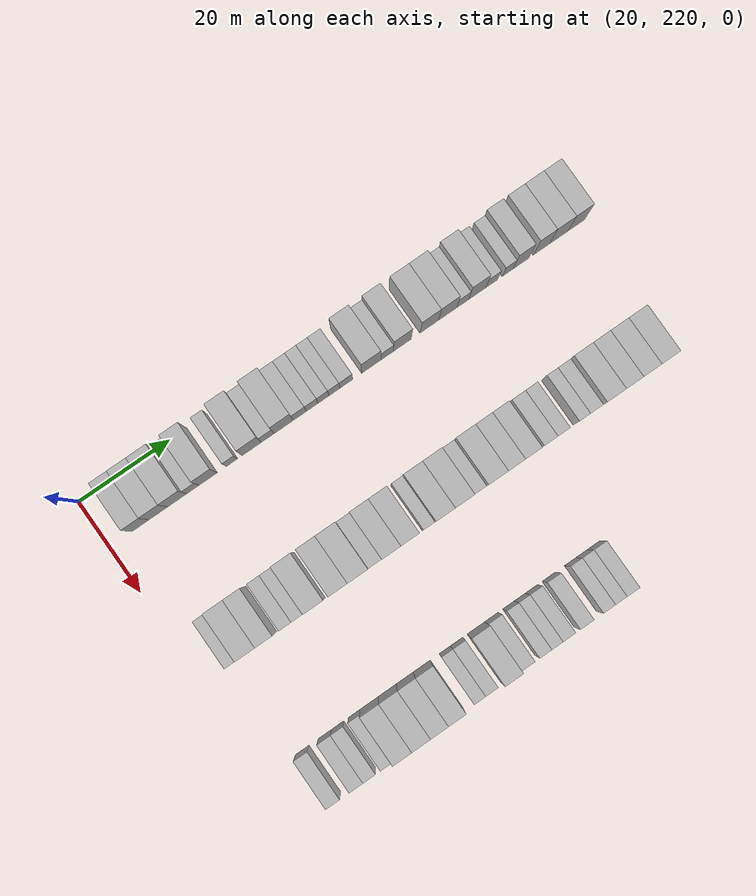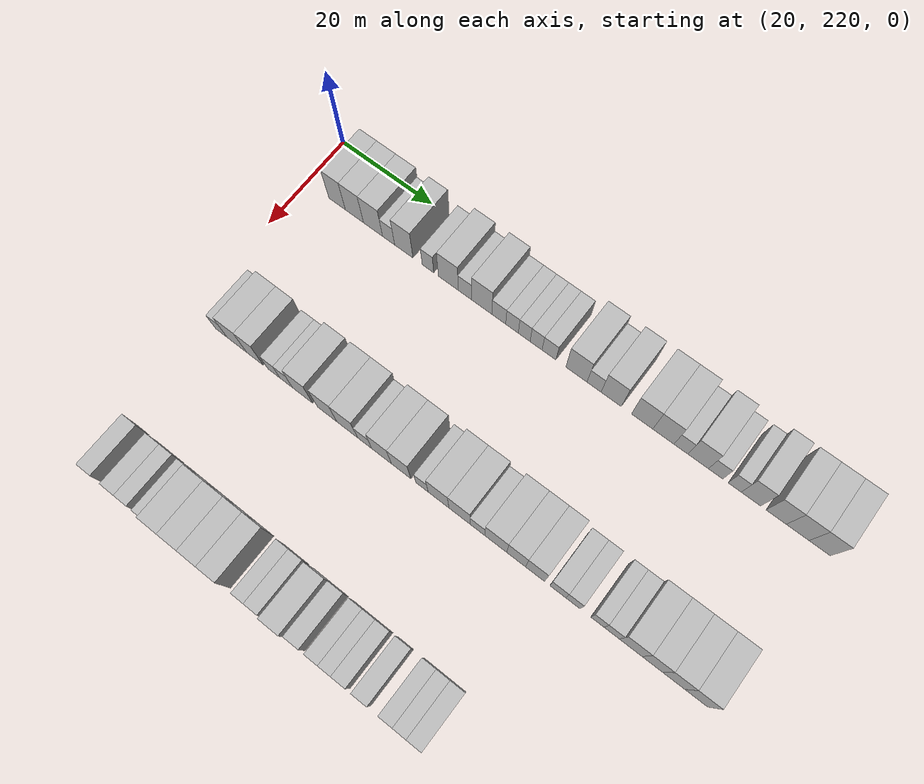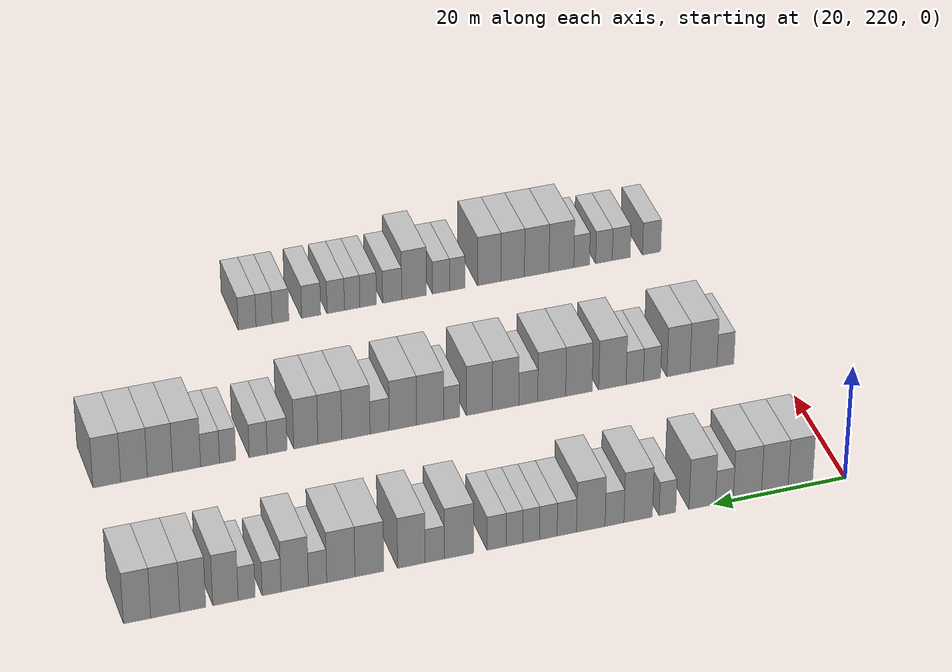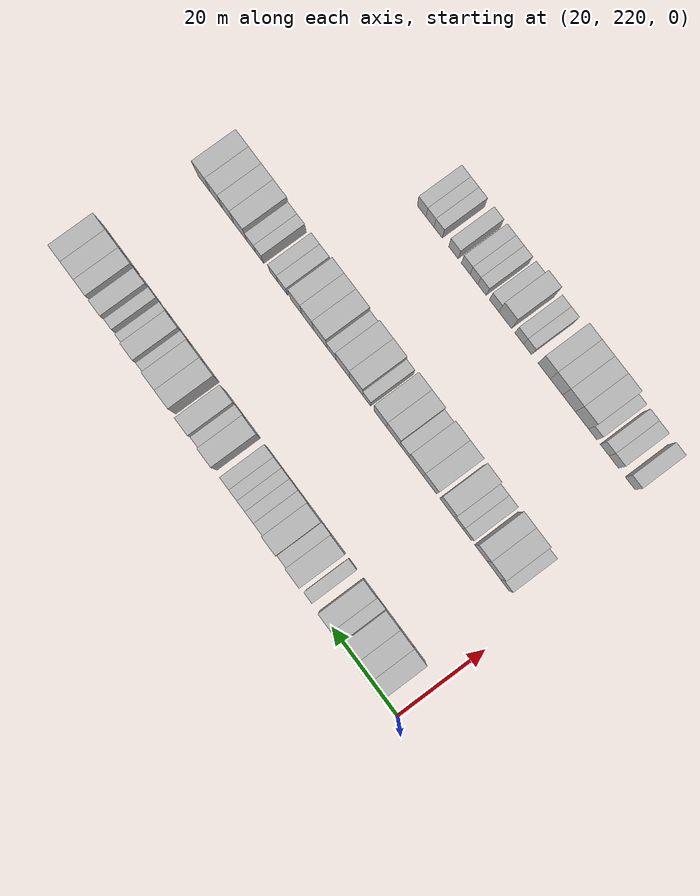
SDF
<sdf version="1.6">
 <world name="default">
  <model name="building_172">
   <static>1</static>
   <pose>25.0000 226.9117 0 0.000000 0.000000 0.000000</pose>
   <link name="link">
    <pose>0 0 4.50 0 0 0</pose>
    <collision name="collision"><geometry><box><size>10.0000 3.7264 9.0000</size></box></geometry></collision>
    <visual name="visual">
     <cast_shadows>0</cast_shadows>
     <geometry><box><size>10.0000 3.7264 9.0000</size></box></geometry>
     <material>
      <script>
       <uri>model://HANNAS_wall/materials/scripts</uri>
       <uri>model://HANNAS_wall/materials/textures</uri>
       <name>vrc/HANNAS_wall</name>
      </script>
     </material>
    </visual>
   </link>
  </model>
  <model name="building_173">
   <static>1</static>
   <pose>25.0000 230.8053 0 0.000000 0.000000 0.000000</pose>
   <link name="link">
    <pose>0 0 4.50 0 0 0</pose>
    <collision name="collision"><geometry><box><size>10.0000 4.0607 9.0000</size></box></geometry></collision>
    <visual name="visual">
     <cast_shadows>0</cast_shadows>
     <geometry><box><size>10.0000 4.0607 9.0000</size></box></geometry>
     <material>
      <script>
       <uri>model://HANNAS_wall/materials/scripts</uri>
       <uri>model://HANNAS_wall/materials/textures</uri>
       <name>vrc/HANNAS_wall</name>
      </script>
     </material>
    </visual>
   </link>
  </model>
  <model name="building_174">
   <static>1</static>
   <pose>25.0000 234.9613 0 0.000000 0.000000 0.000000</pose>
   <link name="link">
    <pose>0 0 4.50 0 0 0</pose>
    <collision name="collision"><geometry><box><size>10.0000 4.2513 9.0000</size></box></geometry></collision>
    <visual name="visual">
     <cast_shadows>0</cast_shadows>
     <geometry><box><size>10.0000 4.2513 9.0000</size></box></geometry>
     <material>
      <script>
       <uri>model://HANNAS_wall/materials/scripts</uri>
       <uri>model://HANNAS_wall/materials/textures</uri>
       <name>vrc/HANNAS_wall</name>
      </script>
     </material>
    </visual>
   </link>
  </model>
  <model name="building_175">
   <static>1</static>
   <pose>25.0000 238.4279 0 0.000000 0.000000 0.000000</pose>
   <link name="link">
    <pose>0 0 3.00 0 0 0</pose>
    <collision name="collision"><geometry><box><size>10.0000 2.6818 6.0000</size></box></geometry></collision>
    <visual name="visual">
     <cast_shadows>0</cast_shadows>
     <geometry><box><size>10.0000 2.6818 6.0000</size></box></geometry>
     <material>
      <script>
       <uri>model://HANNAS_wall/materials/scripts</uri>
       <uri>model://HANNAS_wall/materials/textures</uri>
       <name>vrc/HANNAS_wall</name>
      </script>
     </material>
    </visual>
   </link>
  </model>
  <model name="building_176">
   <static>1</static>
   <pose>25.0000 241.7730 0 0.000000 0.000000 0.000000</pose>
   <link name="link">
    <pose>0 0 4.50 0 0 0</pose>
    <collision name="collision"><geometry><box><size>10.0000 4.0085 9.0000</size></box></geometry></collision>
    <visual name="visual">
     <cast_shadows>0</cast_shadows>
     <geometry><box><size>10.0000 4.0085 9.0000</size></box></geometry>
     <material>
      <script>
       <uri>model://HANNAS_wall/materials/scripts</uri>
       <uri>model://HANNAS_wall/materials/textures</uri>
       <name>vrc/HANNAS_wall</name>
      </script>
     </material>
    </visual>
   </link>
  </model>
  <model name="building_177">
   <static>1</static>
   <pose>25.0000 247.0288 0 0.000000 0.000000 0.000000</pose>
   <link name="link">
    <pose>0 0 3.00 0 0 0</pose>
    <collision name="collision"><geometry><box><size>10.0000 2.5030 6.0000</size></box></geometry></collision>
    <visual name="visual">
     <cast_shadows>0</cast_shadows>
     <geometry><box><size>10.0000 2.5030 6.0000</size></box></geometry>
     <material>
      <script>
       <uri>model://HANNAS_wall/materials/scripts</uri>
       <uri>model://HANNAS_wall/materials/textures</uri>
       <name>vrc/HANNAS_wall</name>
      </script>
     </material>
    </visual>
   </link>
  </model>
  <model name="building_178">
   <static>1</static>
   <pose>25.0000 251.4161 0 0.000000 0.000000 0.000000</pose>
   <link name="link">
    <pose>0 0 4.50 0 0 0</pose>
    <collision name="collision"><geometry><box><size>10.0000 4.2717 9.0000</size></box></geometry></collision>
    <visual name="visual">
     <cast_shadows>0</cast_shadows>
     <geometry><box><size>10.0000 4.2717 9.0000</size></box></geometry>
     <material>
      <script>
       <uri>model://HANNAS_wall/materials/scripts</uri>
       <uri>model://HANNAS_wall/materials/textures</uri>
       <name>vrc/HANNAS_wall</name>
      </script>
     </material>
    </visual>
   </link>
  </model>
  <model name="building_179">
   <static>1</static>
   <pose>25.0000 254.9574 0 0.000000 0.000000 0.000000</pose>
   <link name="link">
    <pose>0 0 3.00 0 0 0</pose>
    <collision name="collision"><geometry><box><size>10.0000 2.8108 6.0000</size></box></geometry></collision>
    <visual name="visual">
     <cast_shadows>0</cast_shadows>
     <geometry><box><size>10.0000 2.8108 6.0000</size></box></geometry>
     <material>
      <script>
       <uri>model://HANNAS_wall/materials/scripts</uri>
       <uri>model://HANNAS_wall/materials/textures</uri>
       <name>vrc/HANNAS_wall</name>
      </script>
     </material>
    </visual>
   </link>
  </model>
  <model name="building_180">
   <static>1</static>
   <pose>25.0000 258.4894 0 0.000000 0.000000 0.000000</pose>
   <link name="link">
    <pose>0 0 4.50 0 0 0</pose>
    <collision name="collision"><geometry><box><size>10.0000 4.2532 9.0000</size></box></geometry></collision>
    <visual name="visual">
     <cast_shadows>0</cast_shadows>
     <geometry><box><size>10.0000 4.2532 9.0000</size></box></geometry>
     <material>
      <script>
       <uri>model://HANNAS_wall/materials/scripts</uri>
       <uri>model://HANNAS_wall/materials/textures</uri>
       <name>vrc/HANNAS_wall</name>
      </script>
     </material>
    </visual>
   </link>
  </model>
  <model name="building_181">
   <static>1</static>
   <pose>25.0000 262.0651 0 0.000000 0.000000 0.000000</pose>
   <link name="link">
    <pose>0 0 3.00 0 0 0</pose>
    <collision name="collision"><geometry><box><size>10.0000 2.8982 6.0000</size></box></geometry></collision>
    <visual name="visual">
     <cast_shadows>0</cast_shadows>
     <geometry><box><size>10.0000 2.8982 6.0000</size></box></geometry>
     <material>
      <script>
       <uri>model://HANNAS_wall/materials/scripts</uri>
       <uri>model://HANNAS_wall/materials/textures</uri>
       <name>vrc/HANNAS_wall</name>
      </script>
     </material>
    </visual>
   </link>
  </model>
  <model name="building_182">
   <static>1</static>
   <pose>25.0000 264.8208 0 0.000000 0.000000 0.000000</pose>
   <link name="link">
    <pose>0 0 3.00 0 0 0</pose>
    <collision name="collision"><geometry><box><size>10.0000 2.6132 6.0000</size></box></geometry></collision>
    <visual name="visual">
     <cast_shadows>0</cast_shadows>
     <geometry><box><size>10.0000 2.6132 6.0000</size></box></geometry>
     <material>
      <script>
       <uri>model://HANNAS_wall/materials/scripts</uri>
       <uri>model://HANNAS_wall/materials/textures</uri>
       <name>vrc/HANNAS_wall</name>
      </script>
     </material>
    </visual>
   </link>
  </model>
  <model name="building_183">
   <static>1</static>
   <pose>25.0000 267.3435 0 0.000000 0.000000 0.000000</pose>
   <link name="link">
    <pose>0 0 3.00 0 0 0</pose>
    <collision name="collision"><geometry><box><size>10.0000 2.4323 6.0000</size></box></geometry></collision>
    <visual name="visual">
     <cast_shadows>0</cast_shadows>
     <geometry><box><size>10.0000 2.4323 6.0000</size></box></geometry>
     <material>
      <script>
       <uri>model://HANNAS_wall/materials/scripts</uri>
       <uri>model://HANNAS_wall/materials/textures</uri>
       <name>vrc/HANNAS_wall</name>
      </script>
     </material>
    </visual>
   </link>
  </model>
  <model name="building_184">
   <static>1</static>
   <pose>25.0000 269.7888 0 0.000000 0.000000 0.000000</pose>
   <link name="link">
    <pose>0 0 3.00 0 0 0</pose>
    <collision name="collision"><geometry><box><size>10.0000 2.4582 6.0000</size></box></geometry></collision>
    <visual name="visual">
     <cast_shadows>0</cast_shadows>
     <geometry><box><size>10.0000 2.4582 6.0000</size></box></geometry>
     <material>
      <script>
       <uri>model://HANNAS_wall/materials/scripts</uri>
       <uri>model://HANNAS_wall/materials/textures</uri>
       <name>vrc/HANNAS_wall</name>
      </script>
     </material>
    </visual>
   </link>
  </model>
  <model name="building_185">
   <static>1</static>
   <pose>25.0000 272.4401 0 0.000000 0.000000 0.000000</pose>
   <link name="link">
    <pose>0 0 3.00 0 0 0</pose>
    <collision name="collision"><geometry><box><size>10.0000 2.8444 6.0000</size></box></geometry></collision>
    <visual name="visual">
     <cast_shadows>0</cast_shadows>
     <geometry><box><size>10.0000 2.8444 6.0000</size></box></geometry>
     <material>
      <script>
       <uri>model://HANNAS_wall/materials/scripts</uri>
       <uri>model://HANNAS_wall/materials/textures</uri>
       <name>vrc/HANNAS_wall</name>
      </script>
     </material>
    </visual>
   </link>
  </model>
  <model name="building_186">
   <static>1</static>
   <pose>25.0000 277.9897 0 0.000000 0.000000 0.000000</pose>
   <link name="link">
    <pose>0 0 4.50 0 0 0</pose>
    <collision name="collision"><geometry><box><size>10.0000 4.2550 9.0000</size></box></geometry></collision>
    <visual name="visual">
     <cast_shadows>0</cast_shadows>
     <geometry><box><size>10.0000 4.2550 9.0000</size></box></geometry>
     <material>
      <script>
       <uri>model://HANNAS_wall/materials/scripts</uri>
       <uri>model://HANNAS_wall/materials/textures</uri>
       <name>vrc/HANNAS_wall</name>
      </script>
     </material>
    </visual>
   </link>
  </model>
  <model name="building_187">
   <static>1</static>
   <pose>25.0000 281.5236 0 0.000000 0.000000 0.000000</pose>
   <link name="link">
    <pose>0 0 3.00 0 0 0</pose>
    <collision name="collision"><geometry><box><size>10.0000 2.8128 6.0000</size></box></geometry></collision>
    <visual name="visual">
     <cast_shadows>0</cast_shadows>
     <geometry><box><size>10.0000 2.8128 6.0000</size></box></geometry>
     <material>
      <script>
       <uri>model://HANNAS_wall/materials/scripts</uri>
       <uri>model://HANNAS_wall/materials/textures</uri>
       <name>vrc/HANNAS_wall</name>
      </script>
     </material>
    </visual>
   </link>
  </model>
  <model name="building_188">
   <static>1</static>
   <pose>25.0000 284.9352 0 0.000000 0.000000 0.000000</pose>
   <link name="link">
    <pose>0 0 4.50 0 0 0</pose>
    <collision name="collision"><geometry><box><size>10.0000 4.0104 9.0000</size></box></geometry></collision>
    <visual name="visual">
     <cast_shadows>0</cast_shadows>
     <geometry><box><size>10.0000 4.0104 9.0000</size></box></geometry>
     <material>
      <script>
       <uri>model://HANNAS_wall/materials/scripts</uri>
       <uri>model://HANNAS_wall/materials/textures</uri>
       <name>vrc/HANNAS_wall</name>
      </script>
     </material>
    </visual>
   </link>
  </model>
  <model name="building_189">
   <static>1</static>
   <pose>25.0000 291.0243 0 0.000000 0.000000 0.000000</pose>
   <link name="link">
    <pose>0 0 4.50 0 0 0</pose>
    <collision name="collision"><geometry><box><size>10.0000 4.1678 9.0000</size></box></geometry></collision>
    <visual name="visual">
     <cast_shadows>0</cast_shadows>
     <geometry><box><size>10.0000 4.1678 9.0000</size></box></geometry>
     <material>
      <script>
       <uri>model://HANNAS_wall/materials/scripts</uri>
       <uri>model://HANNAS_wall/materials/textures</uri>
       <name>vrc/HANNAS_wall</name>
      </script>
     </material>
    </visual>
   </link>
  </model>
  <model name="building_190">
   <static>1</static>
   <pose>25.0000 295.1491 0 0.000000 0.000000 0.000000</pose>
   <link name="link">
    <pose>0 0 4.50 0 0 0</pose>
    <collision name="collision"><geometry><box><size>10.0000 4.0819 9.0000</size></box></geometry></collision>
    <visual name="visual">
     <cast_shadows>0</cast_shadows>
     <geometry><box><size>10.0000 4.0819 9.0000</size></box></geometry>
     <material>
      <script>
       <uri>model://HANNAS_wall/materials/scripts</uri>
       <uri>model://HANNAS_wall/materials/textures</uri>
       <name>vrc/HANNAS_wall</name>
      </script>
     </material>
    </visual>
   </link>
  </model>
  <model name="building_191">
   <static>1</static>
   <pose>25.0000 298.5165 0 0.000000 0.000000 0.000000</pose>
   <link name="link">
    <pose>0 0 3.00 0 0 0</pose>
    <collision name="collision"><geometry><box><size>10.0000 2.6528 6.0000</size></box></geometry></collision>
    <visual name="visual">
     <cast_shadows>0</cast_shadows>
     <geometry><box><size>10.0000 2.6528 6.0000</size></box></geometry>
     <material>
      <script>
       <uri>model://HANNAS_wall/materials/scripts</uri>
       <uri>model://HANNAS_wall/materials/textures</uri>
       <name>vrc/HANNAS_wall</name>
      </script>
     </material>
    </visual>
   </link>
  </model>
  <model name="building_192">
   <static>1</static>
   <pose>25.0000 301.8036 0 0.000000 0.000000 0.000000</pose>
   <link name="link">
    <pose>0 0 4.50 0 0 0</pose>
    <collision name="collision"><geometry><box><size>10.0000 3.9214 9.0000</size></box></geometry></collision>
    <visual name="visual">
     <cast_shadows>0</cast_shadows>
     <geometry><box><size>10.0000 3.9214 9.0000</size></box></geometry>
     <material>
      <script>
       <uri>model://HANNAS_wall/materials/scripts</uri>
       <uri>model://HANNAS_wall/materials/textures</uri>
       <name>vrc/HANNAS_wall</name>
      </script>
     </material>
    </visual>
   </link>
  </model>
  <model name="building_193">
   <static>1</static>
   <pose>25.0000 305.1202 0 0.000000 0.000000 0.000000</pose>
   <link name="link">
    <pose>0 0 3.00 0 0 0</pose>
    <collision name="collision"><geometry><box><size>10.0000 2.7119 6.0000</size></box></geometry></collision>
    <visual name="visual">
     <cast_shadows>0</cast_shadows>
     <geometry><box><size>10.0000 2.7119 6.0000</size></box></geometry>
     <material>
      <script>
       <uri>model://HANNAS_wall/materials/scripts</uri>
       <uri>model://HANNAS_wall/materials/textures</uri>
       <name>vrc/HANNAS_wall</name>
      </script>
     </material>
    </visual>
   </link>
  </model>
  <model name="building_194">
   <static>1</static>
   <pose>25.0000 308.6939 0 0.000000 0.000000 0.000000</pose>
   <link name="link">
    <pose>0 0 3.00 0 0 0</pose>
    <collision name="collision"><geometry><box><size>10.0000 2.4354 6.0000</size></box></geometry></collision>
    <visual name="visual">
     <cast_shadows>0</cast_shadows>
     <geometry><box><size>10.0000 2.4354 6.0000</size></box></geometry>
     <material>
      <script>
       <uri>model://HANNAS_wall/materials/scripts</uri>
       <uri>model://HANNAS_wall/materials/textures</uri>
       <name>vrc/HANNAS_wall</name>
      </script>
     </material>
    </visual>
   </link>
  </model>
  <model name="building_195">
   <static>1</static>
   <pose>25.0000 311.7163 0 0.000000 0.000000 0.000000</pose>
   <link name="link">
    <pose>0 0 4.50 0 0 0</pose>
    <collision name="collision"><geometry><box><size>10.0000 3.6095 9.0000</size></box></geometry></collision>
    <visual name="visual">
     <cast_shadows>0</cast_shadows>
     <geometry><box><size>10.0000 3.6095 9.0000</size></box></geometry>
     <material>
      <script>
       <uri>model://HANNAS_wall/materials/scripts</uri>
       <uri>model://HANNAS_wall/materials/textures</uri>
       <name>vrc/HANNAS_wall</name>
      </script>
     </material>
    </visual>
   </link>
  </model>
  <model name="building_196">
   <static>1</static>
   <pose>25.0000 316.3654 0 0.000000 0.000000 0.000000</pose>
   <link name="link">
    <pose>0 0 4.50 0 0 0</pose>
    <collision name="collision"><geometry><box><size>10.0000 3.6888 9.0000</size></box></geometry></collision>
    <visual name="visual">
     <cast_shadows>0</cast_shadows>
     <geometry><box><size>10.0000 3.6888 9.0000</size></box></geometry>
     <material>
      <script>
       <uri>model://HANNAS_wall/materials/scripts</uri>
       <uri>model://HANNAS_wall/materials/textures</uri>
       <name>vrc/HANNAS_wall</name>
      </script>
     </material>
    </visual>
   </link>
  </model>
  <model name="building_197">
   <static>1</static>
   <pose>25.0000 320.2755 0 0.000000 0.000000 0.000000</pose>
   <link name="link">
    <pose>0 0 4.50 0 0 0</pose>
    <collision name="collision"><geometry><box><size>10.0000 4.1313 9.0000</size></box></geometry></collision>
    <visual name="visual">
     <cast_shadows>0</cast_shadows>
     <geometry><box><size>10.0000 4.1313 9.0000</size></box></geometry>
     <material>
      <script>
       <uri>model://HANNAS_wall/materials/scripts</uri>
       <uri>model://HANNAS_wall/materials/textures</uri>
       <name>vrc/HANNAS_wall</name>
      </script>
     </material>
    </visual>
   </link>
  </model>
  <model name="building_198">
   <static>1</static>
   <pose>25.0000 324.2598 0 0.000000 0.000000 0.000000</pose>
   <link name="link">
    <pose>0 0 4.50 0 0 0</pose>
    <collision name="collision"><geometry><box><size>10.0000 3.8374 9.0000</size></box></geometry></collision>
    <visual name="visual">
     <cast_shadows>0</cast_shadows>
     <geometry><box><size>10.0000 3.8374 9.0000</size></box></geometry>
     <material>
      <script>
       <uri>model://HANNAS_wall/materials/scripts</uri>
       <uri>model://HANNAS_wall/materials/textures</uri>
       <name>vrc/HANNAS_wall</name>
      </script>
     </material>
    </visual>
   </link>
  </model>
  <model name="building_409">
   <static>1</static>
   <pose>55.0000 227.1834 0 0.000000 0.000000 0.000000</pose>
   <link name="link">
    <pose>0 0 3.00 0 0 0</pose>
    <collision name="collision"><geometry><box><size>10.0000 2.6571 6.0000</size></box></geometry></collision>
    <visual name="visual">
     <cast_shadows>0</cast_shadows>
     <geometry><box><size>10.0000 2.6571 6.0000</size></box></geometry>
     <material>
      <script>
       <uri>model://HANNAS_wall/materials/scripts</uri>
       <uri>model://HANNAS_wall/materials/textures</uri>
       <name>vrc/HANNAS_wall</name>
      </script>
     </material>
    </visual>
   </link>
  </model>
  <model name="building_410">
   <static>1</static>
   <pose>55.0000 230.6369 0 0.000000 0.000000 0.000000</pose>
   <link name="link">
    <pose>0 0 4.50 0 0 0</pose>
    <collision name="collision"><geometry><box><size>10.0000 4.2500 9.0000</size></box></geometry></collision>
    <visual name="visual">
     <cast_shadows>0</cast_shadows>
     <geometry><box><size>10.0000 4.2500 9.0000</size></box></geometry>
     <material>
      <script>
       <uri>model://HANNAS_wall/materials/scripts</uri>
       <uri>model://HANNAS_wall/materials/textures</uri>
       <name>vrc/HANNAS_wall</name>
      </script>
     </material>
    </visual>
   </link>
  </model>
  <model name="building_411">
   <static>1</static>
   <pose>55.0000 234.5719 0 0.000000 0.000000 0.000000</pose>
   <link name="link">
    <pose>0 0 4.50 0 0 0</pose>
    <collision name="collision"><geometry><box><size>10.0000 3.6200 9.0000</size></box></geometry></collision>
    <visual name="visual">
     <cast_shadows>0</cast_shadows>
     <geometry><box><size>10.0000 3.6200 9.0000</size></box></geometry>
     <material>
      <script>
       <uri>model://HANNAS_wall/materials/scripts</uri>
       <uri>model://HANNAS_wall/materials/textures</uri>
       <name>vrc/HANNAS_wall</name>
      </script>
     </material>
    </visual>
   </link>
  </model>
  <model name="building_412">
   <static>1</static>
   <pose>55.0000 238.7184 0 0.000000 0.000000 0.000000</pose>
   <link name="link">
    <pose>0 0 3.00 0 0 0</pose>
    <collision name="collision"><geometry><box><size>10.0000 2.6730 6.0000</size></box></geometry></collision>
    <visual name="visual">
     <cast_shadows>0</cast_shadows>
     <geometry><box><size>10.0000 2.6730 6.0000</size></box></geometry>
     <material>
      <script>
       <uri>model://HANNAS_wall/materials/scripts</uri>
       <uri>model://HANNAS_wall/materials/textures</uri>
       <name>vrc/HANNAS_wall</name>
      </script>
     </material>
    </visual>
   </link>
  </model>
  <model name="building_413">
   <static>1</static>
   <pose>55.0000 241.4057 0 0.000000 0.000000 0.000000</pose>
   <link name="link">
    <pose>0 0 3.00 0 0 0</pose>
    <collision name="collision"><geometry><box><size>10.0000 2.7016 6.0000</size></box></geometry></collision>
    <visual name="visual">
     <cast_shadows>0</cast_shadows>
     <geometry><box><size>10.0000 2.7016 6.0000</size></box></geometry>
     <material>
      <script>
       <uri>model://HANNAS_wall/materials/scripts</uri>
       <uri>model://HANNAS_wall/materials/textures</uri>
       <name>vrc/HANNAS_wall</name>
      </script>
     </material>
    </visual>
   </link>
  </model>
  <model name="building_414">
   <static>1</static>
   <pose>55.0000 244.9069 0 0.000000 0.000000 0.000000</pose>
   <link name="link">
    <pose>0 0 4.50 0 0 0</pose>
    <collision name="collision"><geometry><box><size>10.0000 4.3007 9.0000</size></box></geometry></collision>
    <visual name="visual">
     <cast_shadows>0</cast_shadows>
     <geometry><box><size>10.0000 4.3007 9.0000</size></box></geometry>
     <material>
      <script>
       <uri>model://HANNAS_wall/materials/scripts</uri>
       <uri>model://HANNAS_wall/materials/textures</uri>
       <name>vrc/HANNAS_wall</name>
      </script>
     </material>
    </visual>
   </link>
  </model>
  <model name="building_415">
   <static>1</static>
   <pose>55.0000 250.1092 0 0.000000 0.000000 0.000000</pose>
   <link name="link">
    <pose>0 0 4.50 0 0 0</pose>
    <collision name="collision"><geometry><box><size>10.0000 4.1038 9.0000</size></box></geometry></collision>
    <visual name="visual">
     <cast_shadows>0</cast_shadows>
     <geometry><box><size>10.0000 4.1038 9.0000</size></box></geometry>
     <material>
      <script>
       <uri>model://HANNAS_wall/materials/scripts</uri>
       <uri>model://HANNAS_wall/materials/textures</uri>
       <name>vrc/HANNAS_wall</name>
      </script>
     </material>
    </visual>
   </link>
  </model>
  <model name="building_416">
   <static>1</static>
   <pose>55.0000 254.3268 0 0.000000 0.000000 0.000000</pose>
   <link name="link">
    <pose>0 0 4.50 0 0 0</pose>
    <collision name="collision"><geometry><box><size>10.0000 4.3316 9.0000</size></box></geometry></collision>
    <visual name="visual">
     <cast_shadows>0</cast_shadows>
     <geometry><box><size>10.0000 4.3316 9.0000</size></box></geometry>
     <material>
      <script>
       <uri>model://HANNAS_wall/materials/scripts</uri>
       <uri>model://HANNAS_wall/materials/textures</uri>
       <name>vrc/HANNAS_wall</name>
      </script>
     </material>
    </visual>
   </link>
  </model>
  <model name="building_417">
   <static>1</static>
   <pose>55.0000 257.9558 0 0.000000 0.000000 0.000000</pose>
   <link name="link">
    <pose>0 0 3.00 0 0 0</pose>
    <collision name="collision"><geometry><box><size>10.0000 2.9263 6.0000</size></box></geometry></collision>
    <visual name="visual">
     <cast_shadows>0</cast_shadows>
     <geometry><box><size>10.0000 2.9263 6.0000</size></box></geometry>
     <material>
      <script>
       <uri>model://HANNAS_wall/materials/scripts</uri>
       <uri>model://HANNAS_wall/materials/textures</uri>
       <name>vrc/HANNAS_wall</name>
      </script>
     </material>
    </visual>
   </link>
  </model>
  <model name="building_418">
   <static>1</static>
   <pose>55.0000 261.4398 0 0.000000 0.000000 0.000000</pose>
   <link name="link">
    <pose>0 0 4.50 0 0 0</pose>
    <collision name="collision"><geometry><box><size>10.0000 4.0417 9.0000</size></box></geometry></collision>
    <visual name="visual">
     <cast_shadows>0</cast_shadows>
     <geometry><box><size>10.0000 4.0417 9.0000</size></box></geometry>
     <material>
      <script>
       <uri>model://HANNAS_wall/materials/scripts</uri>
       <uri>model://HANNAS_wall/materials/textures</uri>
       <name>vrc/HANNAS_wall</name>
      </script>
     </material>
    </visual>
   </link>
  </model>
  <model name="building_419">
   <static>1</static>
   <pose>55.0000 265.4429 0 0.000000 0.000000 0.000000</pose>
   <link name="link">
    <pose>0 0 4.50 0 0 0</pose>
    <collision name="collision"><geometry><box><size>10.0000 3.9645 9.0000</size></box></geometry></collision>
    <visual name="visual">
     <cast_shadows>0</cast_shadows>
     <geometry><box><size>10.0000 3.9645 9.0000</size></box></geometry>
     <material>
      <script>
       <uri>model://HANNAS_wall/materials/scripts</uri>
       <uri>model://HANNAS_wall/materials/textures</uri>
       <name>vrc/HANNAS_wall</name>
      </script>
     </material>
    </visual>
   </link>
  </model>
  <model name="building_420">
   <static>1</static>
   <pose>55.0000 269.6671 0 0.000000 0.000000 0.000000</pose>
   <link name="link">
    <pose>0 0 3.00 0 0 0</pose>
    <collision name="collision"><geometry><box><size>10.0000 2.4839 6.0000</size></box></geometry></collision>
    <visual name="visual">
     <cast_shadows>0</cast_shadows>
     <geometry><box><size>10.0000 2.4839 6.0000</size></box></geometry>
     <material>
      <script>
       <uri>model://HANNAS_wall/materials/scripts</uri>
       <uri>model://HANNAS_wall/materials/textures</uri>
       <name>vrc/HANNAS_wall</name>
      </script>
     </material>
    </visual>
   </link>
  </model>
  <model name="building_421">
   <static>1</static>
   <pose>55.0000 272.9715 0 0.000000 0.000000 0.000000</pose>
   <link name="link">
    <pose>0 0 4.50 0 0 0</pose>
    <collision name="collision"><geometry><box><size>10.0000 4.1248 9.0000</size></box></geometry></collision>
    <visual name="visual">
     <cast_shadows>0</cast_shadows>
     <geometry><box><size>10.0000 4.1248 9.0000</size></box></geometry>
     <material>
      <script>
       <uri>model://HANNAS_wall/materials/scripts</uri>
       <uri>model://HANNAS_wall/materials/textures</uri>
       <name>vrc/HANNAS_wall</name>
      </script>
     </material>
    </visual>
   </link>
  </model>
  <model name="building_422">
   <static>1</static>
   <pose>55.0000 277.1170 0 0.000000 0.000000 0.000000</pose>
   <link name="link">
    <pose>0 0 4.50 0 0 0</pose>
    <collision name="collision"><geometry><box><size>10.0000 4.1663 9.0000</size></box></geometry></collision>
    <visual name="visual">
     <cast_shadows>0</cast_shadows>
     <geometry><box><size>10.0000 4.1663 9.0000</size></box></geometry>
     <material>
      <script>
       <uri>model://HANNAS_wall/materials/scripts</uri>
       <uri>model://HANNAS_wall/materials/textures</uri>
       <name>vrc/HANNAS_wall</name>
      </script>
     </material>
    </visual>
   </link>
  </model>
  <model name="building_423">
   <static>1</static>
   <pose>55.0000 280.6474 0 0.000000 0.000000 0.000000</pose>
   <link name="link">
    <pose>0 0 3.00 0 0 0</pose>
    <collision name="collision"><geometry><box><size>10.0000 2.8944 6.0000</size></box></geometry></collision>
    <visual name="visual">
     <cast_shadows>0</cast_shadows>
     <geometry><box><size>10.0000 2.8944 6.0000</size></box></geometry>
     <material>
      <script>
       <uri>model://HANNAS_wall/materials/scripts</uri>
       <uri>model://HANNAS_wall/materials/textures</uri>
       <name>vrc/HANNAS_wall</name>
      </script>
     </material>
    </visual>
   </link>
  </model>
  <model name="building_424">
   <static>1</static>
   <pose>55.0000 284.2208 0 0.000000 0.000000 0.000000</pose>
   <link name="link">
    <pose>0 0 4.50 0 0 0</pose>
    <collision name="collision"><geometry><box><size>10.0000 4.2525 9.0000</size></box></geometry></collision>
    <visual name="visual">
     <cast_shadows>0</cast_shadows>
     <geometry><box><size>10.0000 4.2525 9.0000</size></box></geometry>
     <material>
      <script>
       <uri>model://HANNAS_wall/materials/scripts</uri>
       <uri>model://HANNAS_wall/materials/textures</uri>
       <name>vrc/HANNAS_wall</name>
      </script>
     </material>
    </visual>
   </link>
  </model>
  <model name="building_425">
   <static>1</static>
   <pose>55.0000 288.1563 0 0.000000 0.000000 0.000000</pose>
   <link name="link">
    <pose>0 0 4.50 0 0 0</pose>
    <collision name="collision"><geometry><box><size>10.0000 3.6183 9.0000</size></box></geometry></collision>
    <visual name="visual">
     <cast_shadows>0</cast_shadows>
     <geometry><box><size>10.0000 3.6183 9.0000</size></box></geometry>
     <material>
      <script>
       <uri>model://HANNAS_wall/materials/scripts</uri>
       <uri>model://HANNAS_wall/materials/textures</uri>
       <name>vrc/HANNAS_wall</name>
      </script>
     </material>
    </visual>
   </link>
  </model>
  <model name="building_426">
   <static>1</static>
   <pose>55.0000 291.7712 0 0.000000 0.000000 0.000000</pose>
   <link name="link">
    <pose>0 0 4.50 0 0 0</pose>
    <collision name="collision"><geometry><box><size>10.0000 3.6116 9.0000</size></box></geometry></collision>
    <visual name="visual">
     <cast_shadows>0</cast_shadows>
     <geometry><box><size>10.0000 3.6116 9.0000</size></box></geometry>
     <material>
      <script>
       <uri>model://HANNAS_wall/materials/scripts</uri>
       <uri>model://HANNAS_wall/materials/textures</uri>
       <name>vrc/HANNAS_wall</name>
      </script>
     </material>
    </visual>
   </link>
  </model>
  <model name="building_427">
   <static>1</static>
   <pose>55.0000 296.0696 0 0.000000 0.000000 0.000000</pose>
   <link name="link">
    <pose>0 0 3.00 0 0 0</pose>
    <collision name="collision"><geometry><box><size>10.0000 2.9851 6.0000</size></box></geometry></collision>
    <visual name="visual">
     <cast_shadows>0</cast_shadows>
     <geometry><box><size>10.0000 2.9851 6.0000</size></box></geometry>
     <material>
      <script>
       <uri>model://HANNAS_wall/materials/scripts</uri>
       <uri>model://HANNAS_wall/materials/textures</uri>
       <name>vrc/HANNAS_wall</name>
      </script>
     </material>
    </visual>
   </link>
  </model>
  <model name="building_428">
   <static>1</static>
   <pose>55.0000 298.9003 0 0.000000 0.000000 0.000000</pose>
   <link name="link">
    <pose>0 0 3.00 0 0 0</pose>
    <collision name="collision"><geometry><box><size>10.0000 2.6764 6.0000</size></box></geometry></collision>
    <visual name="visual">
     <cast_shadows>0</cast_shadows>
     <geometry><box><size>10.0000 2.6764 6.0000</size></box></geometry>
     <material>
      <script>
       <uri>model://HANNAS_wall/materials/scripts</uri>
       <uri>model://HANNAS_wall/materials/textures</uri>
       <name>vrc/HANNAS_wall</name>
      </script>
     </material>
    </visual>
   </link>
  </model>
  <model name="building_429">
   <static>1</static>
   <pose>55.0000 303.4484 0 0.000000 0.000000 0.000000</pose>
   <link name="link">
    <pose>0 0 3.00 0 0 0</pose>
    <collision name="collision"><geometry><box><size>10.0000 2.4198 6.0000</size></box></geometry></collision>
    <visual name="visual">
     <cast_shadows>0</cast_shadows>
     <geometry><box><size>10.0000 2.4198 6.0000</size></box></geometry>
     <material>
      <script>
       <uri>model://HANNAS_wall/materials/scripts</uri>
       <uri>model://HANNAS_wall/materials/textures</uri>
       <name>vrc/HANNAS_wall</name>
      </script>
     </material>
    </visual>
   </link>
  </model>
  <model name="building_430">
   <static>1</static>
   <pose>55.0000 306.0640 0 0.000000 0.000000 0.000000</pose>
   <link name="link">
    <pose>0 0 3.00 0 0 0</pose>
    <collision name="collision"><geometry><box><size>10.0000 2.8113 6.0000</size></box></geometry></collision>
    <visual name="visual">
     <cast_shadows>0</cast_shadows>
     <geometry><box><size>10.0000 2.8113 6.0000</size></box></geometry>
     <material>
      <script>
       <uri>model://HANNAS_wall/materials/scripts</uri>
       <uri>model://HANNAS_wall/materials/textures</uri>
       <name>vrc/HANNAS_wall</name>
      </script>
     </material>
    </visual>
   </link>
  </model>
  <model name="building_431">
   <static>1</static>
   <pose>55.0000 309.5425 0 0.000000 0.000000 0.000000</pose>
   <link name="link">
    <pose>0 0 4.50 0 0 0</pose>
    <collision name="collision"><geometry><box><size>10.0000 4.1459 9.0000</size></box></geometry></collision>
    <visual name="visual">
     <cast_shadows>0</cast_shadows>
     <geometry><box><size>10.0000 4.1459 9.0000</size></box></geometry>
     <material>
      <script>
       <uri>model://HANNAS_wall/materials/scripts</uri>
       <uri>model://HANNAS_wall/materials/textures</uri>
       <name>vrc/HANNAS_wall</name>
      </script>
     </material>
    </visual>
   </link>
  </model>
  <model name="building_432">
   <static>1</static>
   <pose>55.0000 313.4695 0 0.000000 0.000000 0.000000</pose>
   <link name="link">
    <pose>0 0 4.50 0 0 0</pose>
    <collision name="collision"><geometry><box><size>10.0000 3.7080 9.0000</size></box></geometry></collision>
    <visual name="visual">
     <cast_shadows>0</cast_shadows>
     <geometry><box><size>10.0000 3.7080 9.0000</size></box></geometry>
     <material>
      <script>
       <uri>model://HANNAS_wall/materials/scripts</uri>
       <uri>model://HANNAS_wall/materials/textures</uri>
       <name>vrc/HANNAS_wall</name>
      </script>
     </material>
    </visual>
   </link>
  </model>
  <model name="building_433">
   <static>1</static>
   <pose>55.0000 317.2940 0 0.000000 0.000000 0.000000</pose>
   <link name="link">
    <pose>0 0 4.50 0 0 0</pose>
    <collision name="collision"><geometry><box><size>10.0000 3.9411 9.0000</size></box></geometry></collision>
    <visual name="visual">
     <cast_shadows>0</cast_shadows>
     <geometry><box><size>10.0000 3.9411 9.0000</size></box></geometry>
     <material>
      <script>
       <uri>model://HANNAS_wall/materials/scripts</uri>
       <uri>model://HANNAS_wall/materials/textures</uri>
       <name>vrc/HANNAS_wall</name>
      </script>
     </material>
    </visual>
   </link>
  </model>
  <model name="building_434">
   <static>1</static>
   <pose>55.0000 321.2988 0 0.000000 0.000000 0.000000</pose>
   <link name="link">
    <pose>0 0 4.50 0 0 0</pose>
    <collision name="collision"><geometry><box><size>10.0000 4.0685 9.0000</size></box></geometry></collision>
    <visual name="visual">
     <cast_shadows>0</cast_shadows>
     <geometry><box><size>10.0000 4.0685 9.0000</size></box></geometry>
     <material>
      <script>
       <uri>model://HANNAS_wall/materials/scripts</uri>
       <uri>model://HANNAS_wall/materials/textures</uri>
       <name>vrc/HANNAS_wall</name>
      </script>
     </material>
    </visual>
   </link>
  </model>
  <model name="building_637">
   <static>1</static>
   <pose>85.0000 228.1619 0 0.000000 0.000000 0.000000</pose>
   <link name="link">
    <pose>0 0 3.00 0 0 0</pose>
    <collision name="collision"><geometry><box><size>10.0000 2.9559 6.0000</size></box></geometry></collision>
    <visual name="visual">
     <cast_shadows>0</cast_shadows>
     <geometry><box><size>10.0000 2.9559 6.0000</size></box></geometry>
     <material>
      <script>
       <uri>model://HANNAS_wall/materials/scripts</uri>
       <uri>model://HANNAS_wall/materials/textures</uri>
       <name>vrc/HANNAS_wall</name>
      </script>
     </material>
    </visual>
   </link>
  </model>
  <model name="building_638">
   <static>1</static>
   <pose>85.0000 233.0943 0 0.000000 0.000000 0.000000</pose>
   <link name="link">
    <pose>0 0 3.00 0 0 0</pose>
    <collision name="collision"><geometry><box><size>10.0000 2.9088 6.0000</size></box></geometry></collision>
    <visual name="visual">
     <cast_shadows>0</cast_shadows>
     <geometry><box><size>10.0000 2.9088 6.0000</size></box></geometry>
     <material>
      <script>
       <uri>model://HANNAS_wall/materials/scripts</uri>
       <uri>model://HANNAS_wall/materials/textures</uri>
       <name>vrc/HANNAS_wall</name>
      </script>
     </material>
    </visual>
   </link>
  </model>
  <model name="building_639">
   <static>1</static>
   <pose>85.0000 235.8924 0 0.000000 0.000000 0.000000</pose>
   <link name="link">
    <pose>0 0 3.00 0 0 0</pose>
    <collision name="collision"><geometry><box><size>10.0000 2.6876 6.0000</size></box></geometry></collision>
    <visual name="visual">
     <cast_shadows>0</cast_shadows>
     <geometry><box><size>10.0000 2.6876 6.0000</size></box></geometry>
     <material>
      <script>
       <uri>model://HANNAS_wall/materials/scripts</uri>
       <uri>model://HANNAS_wall/materials/textures</uri>
       <name>vrc/HANNAS_wall</name>
      </script>
     </material>
    </visual>
   </link>
  </model>
  <model name="building_640">
   <static>1</static>
   <pose>85.0000 239.5034 0 0.000000 0.000000 0.000000</pose>
   <link name="link">
    <pose>0 0 3.00 0 0 0</pose>
    <collision name="collision"><geometry><box><size>10.0000 2.5343 6.0000</size></box></geometry></collision>
    <visual name="visual">
     <cast_shadows>0</cast_shadows>
     <geometry><box><size>10.0000 2.5343 6.0000</size></box></geometry>
     <material>
      <script>
       <uri>model://HANNAS_wall/materials/scripts</uri>
       <uri>model://HANNAS_wall/materials/textures</uri>
       <name>vrc/HANNAS_wall</name>
      </script>
     </material>
    </visual>
   </link>
  </model>
  <model name="building_641">
   <static>1</static>
   <pose>85.0000 242.7814 0 0.000000 0.000000 0.000000</pose>
   <link name="link">
    <pose>0 0 4.50 0 0 0</pose>
    <collision name="collision"><geometry><box><size>10.0000 4.0217 9.0000</size></box></geometry></collision>
    <visual name="visual">
     <cast_shadows>0</cast_shadows>
     <geometry><box><size>10.0000 4.0217 9.0000</size></box></geometry>
     <material>
      <script>
       <uri>model://HANNAS_wall/materials/scripts</uri>
       <uri>model://HANNAS_wall/materials/textures</uri>
       <name>vrc/HANNAS_wall</name>
      </script>
     </material>
    </visual>
   </link>
  </model>
  <model name="building_642">
   <static>1</static>
   <pose>85.0000 246.7585 0 0.000000 0.000000 0.000000</pose>
   <link name="link">
    <pose>0 0 4.50 0 0 0</pose>
    <collision name="collision"><geometry><box><size>10.0000 3.9325 9.0000</size></box></geometry></collision>
    <visual name="visual">
     <cast_shadows>0</cast_shadows>
     <geometry><box><size>10.0000 3.9325 9.0000</size></box></geometry>
     <material>
      <script>
       <uri>model://HANNAS_wall/materials/scripts</uri>
       <uri>model://HANNAS_wall/materials/textures</uri>
       <name>vrc/HANNAS_wall</name>
      </script>
     </material>
    </visual>
   </link>
  </model>
  <model name="building_643">
   <static>1</static>
   <pose>85.0000 250.6120 0 0.000000 0.000000 0.000000</pose>
   <link name="link">
    <pose>0 0 4.50 0 0 0</pose>
    <collision name="collision"><geometry><box><size>10.0000 3.7745 9.0000</size></box></geometry></collision>
    <visual name="visual">
     <cast_shadows>0</cast_shadows>
     <geometry><box><size>10.0000 3.7745 9.0000</size></box></geometry>
     <material>
      <script>
       <uri>model://HANNAS_wall/materials/scripts</uri>
       <uri>model://HANNAS_wall/materials/textures</uri>
       <name>vrc/HANNAS_wall</name>
      </script>
     </material>
    </visual>
   </link>
  </model>
  <model name="building_644">
   <static>1</static>
   <pose>85.0000 254.3635 0 0.000000 0.000000 0.000000</pose>
   <link name="link">
    <pose>0 0 4.50 0 0 0</pose>
    <collision name="collision"><geometry><box><size>10.0000 3.7286 9.0000</size></box></geometry></collision>
    <visual name="visual">
     <cast_shadows>0</cast_shadows>
     <geometry><box><size>10.0000 3.7286 9.0000</size></box></geometry>
     <material>
      <script>
       <uri>model://HANNAS_wall/materials/scripts</uri>
       <uri>model://HANNAS_wall/materials/textures</uri>
       <name>vrc/HANNAS_wall</name>
      </script>
     </material>
    </visual>
   </link>
  </model>
  <model name="building_645">
   <static>1</static>
   <pose>85.0000 259.4578 0 0.000000 0.000000 0.000000</pose>
   <link name="link">
    <pose>0 0 3.00 0 0 0</pose>
    <collision name="collision"><geometry><box><size>10.0000 2.4599 6.0000</size></box></geometry></collision>
    <visual name="visual">
     <cast_shadows>0</cast_shadows>
     <geometry><box><size>10.0000 2.4599 6.0000</size></box></geometry>
     <material>
      <script>
       <uri>model://HANNAS_wall/materials/scripts</uri>
       <uri>model://HANNAS_wall/materials/textures</uri>
       <name>vrc/HANNAS_wall</name>
      </script>
     </material>
    </visual>
   </link>
  </model>
  <model name="building_646">
   <static>1</static>
   <pose>85.0000 262.0332 0 0.000000 0.000000 0.000000</pose>
   <link name="link">
    <pose>0 0 3.00 0 0 0</pose>
    <collision name="collision"><geometry><box><size>10.0000 2.6910 6.0000</size></box></geometry></collision>
    <visual name="visual">
     <cast_shadows>0</cast_shadows>
     <geometry><box><size>10.0000 2.6910 6.0000</size></box></geometry>
     <material>
      <script>
       <uri>model://HANNAS_wall/materials/scripts</uri>
       <uri>model://HANNAS_wall/materials/textures</uri>
       <name>vrc/HANNAS_wall</name>
      </script>
     </material>
    </visual>
   </link>
  </model>
  <model name="building_647">
   <static>1</static>
   <pose>85.0000 266.3301 0 0.000000 0.000000 0.000000</pose>
   <link name="link">
    <pose>0 0 4.50 0 0 0</pose>
    <collision name="collision"><geometry><box><size>10.0000 3.9027 9.0000</size></box></geometry></collision>
    <visual name="visual">
     <cast_shadows>0</cast_shadows>
     <geometry><box><size>10.0000 3.9027 9.0000</size></box></geometry>
     <material>
      <script>
       <uri>model://HANNAS_wall/materials/scripts</uri>
       <uri>model://HANNAS_wall/materials/textures</uri>
       <name>vrc/HANNAS_wall</name>
      </script>
     </material>
    </visual>
   </link>
  </model>
  <model name="building_648">
   <static>1</static>
   <pose>85.0000 269.7735 0 0.000000 0.000000 0.000000</pose>
   <link name="link">
    <pose>0 0 3.00 0 0 0</pose>
    <collision name="collision"><geometry><box><size>10.0000 2.9841 6.0000</size></box></geometry></collision>
    <visual name="visual">
     <cast_shadows>0</cast_shadows>
     <geometry><box><size>10.0000 2.9841 6.0000</size></box></geometry>
     <material>
      <script>
       <uri>model://HANNAS_wall/materials/scripts</uri>
       <uri>model://HANNAS_wall/materials/textures</uri>
       <name>vrc/HANNAS_wall</name>
      </script>
     </material>
    </visual>
   </link>
  </model>
  <model name="building_649">
   <static>1</static>
   <pose>85.0000 273.5706 0 0.000000 0.000000 0.000000</pose>
   <link name="link">
    <pose>0 0 3.00 0 0 0</pose>
    <collision name="collision"><geometry><box><size>10.0000 2.6103 6.0000</size></box></geometry></collision>
    <visual name="visual">
     <cast_shadows>0</cast_shadows>
     <geometry><box><size>10.0000 2.6103 6.0000</size></box></geometry>
     <material>
      <script>
       <uri>model://HANNAS_wall/materials/scripts</uri>
       <uri>model://HANNAS_wall/materials/textures</uri>
       <name>vrc/HANNAS_wall</name>
      </script>
     </material>
    </visual>
   </link>
  </model>
  <model name="building_650">
   <static>1</static>
   <pose>85.0000 276.0901 0 0.000000 0.000000 0.000000</pose>
   <link name="link">
    <pose>0 0 3.00 0 0 0</pose>
    <collision name="collision"><geometry><box><size>10.0000 2.4288 6.0000</size></box></geometry></collision>
    <visual name="visual">
     <cast_shadows>0</cast_shadows>
     <geometry><box><size>10.0000 2.4288 6.0000</size></box></geometry>
     <material>
      <script>
       <uri>model://HANNAS_wall/materials/scripts</uri>
       <uri>model://HANNAS_wall/materials/textures</uri>
       <name>vrc/HANNAS_wall</name>
      </script>
     </material>
    </visual>
   </link>
  </model>
  <model name="building_651">
   <static>1</static>
   <pose>85.0000 278.6633 0 0.000000 0.000000 0.000000</pose>
   <link name="link">
    <pose>0 0 3.00 0 0 0</pose>
    <collision name="collision"><geometry><box><size>10.0000 2.7176 6.0000</size></box></geometry></collision>
    <visual name="visual">
     <cast_shadows>0</cast_shadows>
     <geometry><box><size>10.0000 2.7176 6.0000</size></box></geometry>
     <material>
      <script>
       <uri>model://HANNAS_wall/materials/scripts</uri>
       <uri>model://HANNAS_wall/materials/textures</uri>
       <name>vrc/HANNAS_wall</name>
      </script>
     </material>
    </visual>
   </link>
  </model>
  <model name="building_652">
   <static>1</static>
   <pose>85.0000 282.5103 0 0.000000 0.000000 0.000000</pose>
   <link name="link">
    <pose>0 0 3.00 0 0 0</pose>
    <collision name="collision"><geometry><box><size>10.0000 2.9763 6.0000</size></box></geometry></collision>
    <visual name="visual">
     <cast_shadows>0</cast_shadows>
     <geometry><box><size>10.0000 2.9763 6.0000</size></box></geometry>
     <material>
      <script>
       <uri>model://HANNAS_wall/materials/scripts</uri>
       <uri>model://HANNAS_wall/materials/textures</uri>
       <name>vrc/HANNAS_wall</name>
      </script>
     </material>
    </visual>
   </link>
  </model>
  <model name="building_653">
   <static>1</static>
   <pose>85.0000 287.2985 0 0.000000 0.000000 0.000000</pose>
   <link name="link">
    <pose>0 0 3.00 0 0 0</pose>
    <collision name="collision"><geometry><box><size>10.0000 2.6001 6.0000</size></box></geometry></collision>
    <visual name="visual">
     <cast_shadows>0</cast_shadows>
     <geometry><box><size>10.0000 2.6001 6.0000</size></box></geometry>
     <material>
      <script>
       <uri>model://HANNAS_wall/materials/scripts</uri>
       <uri>model://HANNAS_wall/materials/textures</uri>
       <name>vrc/HANNAS_wall</name>
      </script>
     </material>
    </visual>
   </link>
  </model>
  <model name="building_654">
   <static>1</static>
   <pose>85.0000 289.8490 0 0.000000 0.000000 0.000000</pose>
   <link name="link">
    <pose>0 0 3.00 0 0 0</pose>
    <collision name="collision"><geometry><box><size>10.0000 2.5009 6.0000</size></box></geometry></collision>
    <visual name="visual">
     <cast_shadows>0</cast_shadows>
     <geometry><box><size>10.0000 2.5009 6.0000</size></box></geometry>
     <material>
      <script>
       <uri>model://HANNAS_wall/materials/scripts</uri>
       <uri>model://HANNAS_wall/materials/textures</uri>
       <name>vrc/HANNAS_wall</name>
      </script>
     </material>
    </visual>
   </link>
  </model>
  <model name="building_655">
   <static>1</static>
   <pose>85.0000 292.4853 0 0.000000 0.000000 0.000000</pose>
   <link name="link">
    <pose>0 0 3.00 0 0 0</pose>
    <collision name="collision"><geometry><box><size>10.0000 2.7717 6.0000</size></box></geometry></collision>
    <visual name="visual">
     <cast_shadows>0</cast_shadows>
     <geometry><box><size>10.0000 2.7717 6.0000</size></box></geometry>
     <material>
      <script>
       <uri>model://HANNAS_wall/materials/scripts</uri>
       <uri>model://HANNAS_wall/materials/textures</uri>
       <name>vrc/HANNAS_wall</name>
      </script>
     </material>
    </visual>
   </link>
  </model>
 </world>
</sdf>
